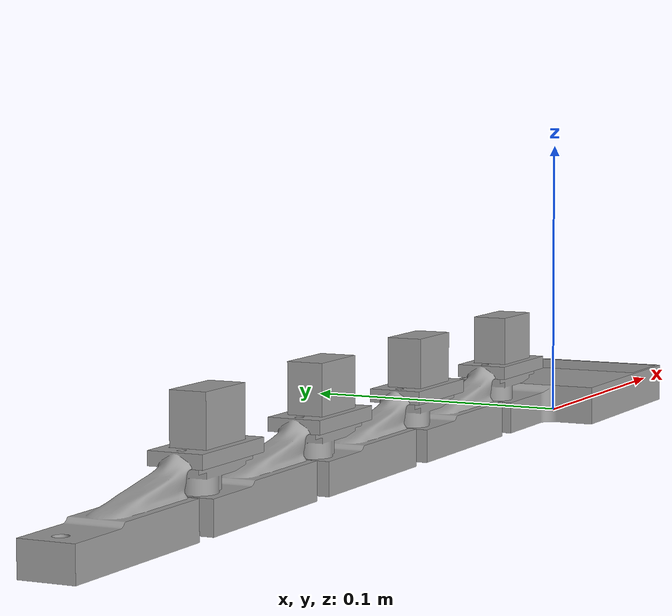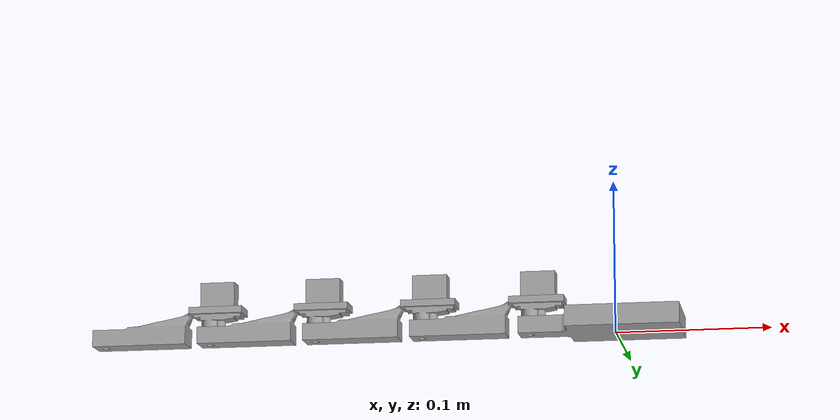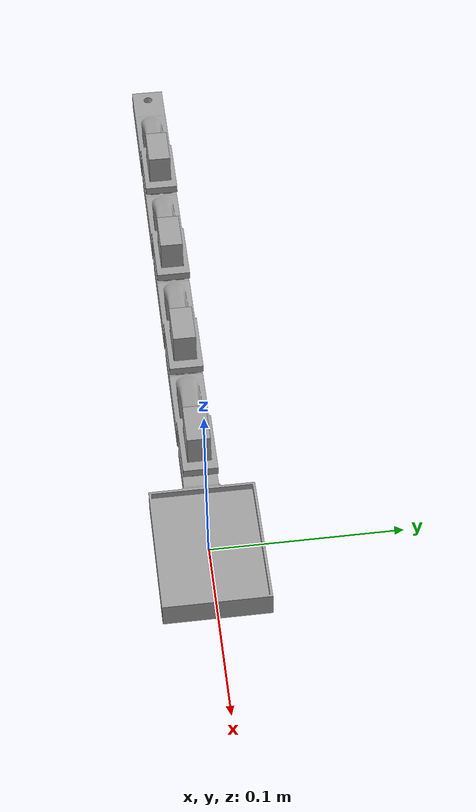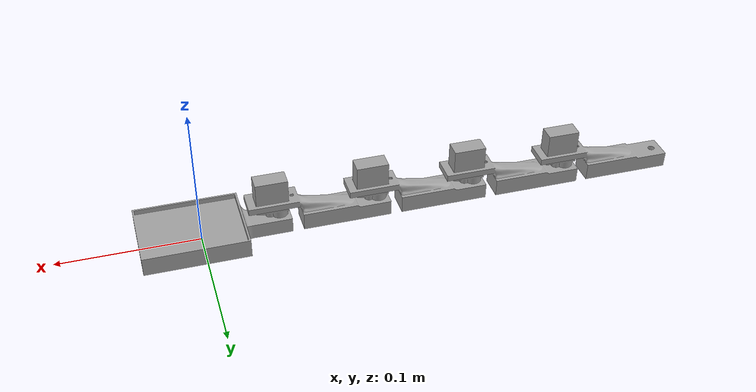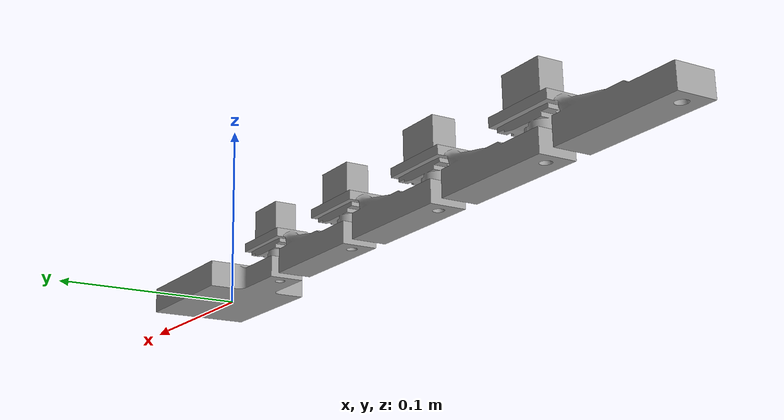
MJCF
<?xml version="1.0" ?>
<!-- Generated using onshape-to-robot -->
<!-- Onshape https://cad.onshape.com/documents/9ec2cb846d9d70ae61304659/w/ba4d2c22ff07b7474239914d/e/04263f3c44f724c158d2da0b -->
<mujoco model="snake">
  <compiler angle="radian" meshdir="assets" autolimits="true"/>
  <default>
    <default class="snake">
      <joint frictionloss="0.1" armature="0.005"/>
      <position kp="50" dampratio="1"/>
      <default class="visual">
        <geom type="mesh" contype="0" conaffinity="0" group="2"/>
      </default>
      <default class="collision">
        <geom group="3"/>
      </default>
    </default>
  </default>
  <worldbody>
    <!-- Link servo2 -->
    <body name="servo2" pos="0 0 0" quat="1 0 0 0" childclass="snake">
      <freejoint name="servo2_freejoint"/>
      <inertial pos="-0.0502156 4.07719e-13 0.0269005" mass="0.0138" fullinertia="7.56082e-07 1.07689e-06 5.43667e-07 -8.52222e-23 -5.73071e-08 -1.01692e-22"/>
      <!-- Part servo2 -->
      <geom type="mesh" class="visual" pos="-0.0384702 5.00034e-16 3.18303e-17" quat="0.707107 0.707107 -1.11022e-16 -1.01413e-17" mesh="servo2" material="servo2_material"/>
      <geom type="mesh" class="collision" pos="-0.0384702 5.00034e-16 3.18303e-17" quat="0.707107 0.707107 -1.11022e-16 -1.01413e-17" mesh="servo2" material="servo2_material"/>
      <!-- Link head -->
      <body name="head" pos="-0.0553202 5.05155e-16 0.007" quat="1 -1.06915e-16 1.11022e-16 -1.28223e-16">
        <!-- Joint from servo2 to head -->
        <joint axis="0 0 1" name="Servo1" type="hinge" range="-1.57 1.57" frictionloss="0.1"/>
        <inertial pos="0.0548283 -1.49039e-08 -0.00176061" mass="0.054" fullinertia="1.3842e-05 4.33369e-05 5.60532e-05 -2.06407e-11 1.32445e-07 4.76261e-12"/>
        <!-- Part head -->
        <geom type="mesh" class="visual" pos="-0.05315 -5.15091e-16 -0.007" quat="0.707107 0.707107 1.11022e-16 4.79386e-17" mesh="head" material="head_material"/>
        <geom type="mesh" class="collision" pos="-0.05315 -5.15091e-16 -0.007" quat="0.707107 0.707107 1.11022e-16 4.79386e-17" mesh="head" material="head_material"/>
      </body>
      <!-- Link body1 -->
      <body name="body1" pos="-0.0642209 -2.67714e-10 0.02" quat="1.06915e-16 1 -7.45931e-17 6.79763e-18">
        <!-- Joint from servo2 to body1 -->
        <!-- Joint is "fixed", skipping it -->
        <inertial pos="-0.029902 4.8746e-08 0.0115129" mass="0.0108" fullinertia="1.33619e-06 1.12727e-05 1.10359e-05 -2.14605e-11 1.70929e-06 1.12583e-11"/>
        <!-- Part body1 -->
        <geom type="mesh" class="visual" pos="-0.0452492 -2.67714e-10 0.02" quat="0.707107 -0.707107 1.11022e-16 -1.59463e-16" mesh="body1" material="body1_material"/>
        <geom type="mesh" class="collision" pos="-0.0452492 -2.67714e-10 0.02" quat="0.707107 -0.707107 1.11022e-16 -1.59463e-16" mesh="body1" material="body1_material"/>
        <!-- Link servo2_2 -->
        <body name="servo2_2" pos="-0.0620992 -2.67714e-10 0.013" quat="1 1.03799e-16 -1.11022e-16 -1.11298e-16">
          <!-- Joint from body1 to servo2_2 -->
          <joint axis="0 0 1" name="Servo2" type="hinge" range="-1.57 1.57" frictionloss="0.1"/>
          <inertial pos="0.00510462 -4.07211e-13 -0.0199005" mass="0.0138" fullinertia="7.56082e-07 1.07689e-06 5.43667e-07 9.1835e-68 5.73071e-08 1.99525e-66"/>
          <!-- Part servo2_2 -->
          <geom type="mesh" class="visual" pos="0.01685 0 0.007" quat="0.707107 -0.707107 -0 4.32978e-17" mesh="servo2" material="servo2_material"/>
          <geom type="mesh" class="collision" pos="0.01685 0 0.007" quat="0.707107 -0.707107 -0 4.32978e-17" mesh="servo2" material="servo2_material"/>
          <!-- Link body1_2 -->
          <body name="body1_2" pos="-0.00890077 2.67714e-10 -0.013" quat="1 0 -2.30876e-16 -8.83132e-18">
            <!-- Joint from servo2_2 to body1_2 -->
            <!-- Joint is "fixed", skipping it -->
            <inertial pos="-0.029902 4.8746e-08 0.0115129" mass="0.0108" fullinertia="1.33619e-06 1.12727e-05 1.10359e-05 -2.14605e-11 1.70929e-06 1.12583e-11"/>
            <!-- Part body1_2 -->
            <geom type="mesh" class="visual" pos="-0.0452492 -2.67714e-10 0.02" quat="0.707107 -0.707107 0 4.32978e-17" mesh="body1" material="body1_material"/>
            <geom type="mesh" class="collision" pos="-0.0452492 -2.67714e-10 0.02" quat="0.707107 -0.707107 0 4.32978e-17" mesh="body1" material="body1_material"/>
            <!-- Link servo2_3 -->
            <body name="servo2_3" pos="-0.0620992 -2.67714e-10 0.013" quat="1 0 -2.30876e-16 -8.83132e-18">
              <!-- Joint from body1_2 to servo2_3 -->
              <joint axis="0 0 1" name="Servo3" type="hinge" range="-1.57 1.57" frictionloss="0.1"/>
              <inertial pos="0.00510462 -4.07211e-13 -0.0199005" mass="0.0138" fullinertia="7.56082e-07 1.07689e-06 5.43667e-07 9.1835e-68 5.73071e-08 1.99525e-66"/>
              <!-- Part servo2_3 -->
              <geom type="mesh" class="visual" pos="0.01685 0 0.007" quat="0.707107 -0.707107 -0 4.32978e-17" mesh="servo2" material="servo2_material"/>
              <geom type="mesh" class="collision" pos="0.01685 0 0.007" quat="0.707107 -0.707107 -0 4.32978e-17" mesh="servo2" material="servo2_material"/>
              <!-- Link body1_3 -->
              <body name="body1_3" pos="-0.00890077 2.67714e-10 -0.013" quat="1 0 -2.30876e-16 -8.83132e-18">
                <!-- Joint from servo2_3 to body1_3 -->
                <!-- Joint is "fixed", skipping it -->
                <inertial pos="-0.029902 4.8746e-08 0.0115129" mass="0.0108" fullinertia="1.33619e-06 1.12727e-05 1.10359e-05 -2.14605e-11 1.70929e-06 1.12583e-11"/>
                <!-- Part body1_3 -->
                <geom type="mesh" class="visual" pos="-0.0452492 -2.67714e-10 0.02" quat="0.707107 -0.707107 0 4.32978e-17" mesh="body1" material="body1_material"/>
                <geom type="mesh" class="collision" pos="-0.0452492 -2.67714e-10 0.02" quat="0.707107 -0.707107 0 4.32978e-17" mesh="body1" material="body1_material"/>
                <!-- Link servo2_4 -->
                <body name="servo2_4" pos="-0.0620992 -2.67714e-10 0.013" quat="1 0 -2.30876e-16 -8.83132e-18">
                  <!-- Joint from body1_3 to servo2_4 -->
                  <joint axis="0 0 1" name="Servo4" type="hinge" range="-1.57 1.57" frictionloss="0.1"/>
                  <inertial pos="0.00510462 -4.07211e-13 -0.0199005" mass="0.0138" fullinertia="7.56082e-07 1.07689e-06 5.43667e-07 9.1835e-68 5.73071e-08 1.99525e-66"/>
                  <!-- Part servo2_4 -->
                  <geom type="mesh" class="visual" pos="0.01685 0 0.007" quat="0.707107 -0.707107 -0 4.32978e-17" mesh="servo2" material="servo2_material"/>
                  <geom type="mesh" class="collision" pos="0.01685 0 0.007" quat="0.707107 -0.707107 -0 4.32978e-17" mesh="servo2" material="servo2_material"/>
                  <!-- Link body1_4 -->
                  <body name="body1_4" pos="-0.00890077 2.67714e-10 -0.013" quat="1 0 -2.30876e-16 -8.83132e-18">
                    <!-- Joint from servo2_4 to body1_4 -->
                    <!-- Joint is "fixed", skipping it -->
                    <inertial pos="-0.029902 4.8746e-08 0.0115129" mass="0.0108" fullinertia="1.33619e-06 1.12727e-05 1.10359e-05 -2.14605e-11 1.70929e-06 1.12583e-11"/>
                    <!-- Part body1_4 -->
                    <geom type="mesh" class="visual" pos="-0.0452492 -2.67714e-10 0.02" quat="0.707107 -0.707107 0 4.32978e-17" mesh="body1" material="body1_material"/>
                    <geom type="mesh" class="collision" pos="-0.0452492 -2.67714e-10 0.02" quat="0.707107 -0.707107 0 4.32978e-17" mesh="body1" material="body1_material"/>
                  </body>
                </body>
              </body>
            </body>
          </body>
        </body>
      </body>
    </body>
  </worldbody>
  <asset>
    <mesh file="body1.stl"/>
    <mesh file="servo2.stl"/>
    <mesh file="head.stl"/>
    <material name="servo2_material" rgba="0.627451 0.627451 0.627451 1"/>
    <material name="head_material" rgba="0.627451 0.627451 0.627451 1"/>
    <material name="body1_material" rgba="0.627451 0.627451 0.627451 1"/>
  </asset>
  <actuator>
    <position class="snake" name="Servo1" joint="Servo1" forcerange="-0.35 0.35" inheritrange="1"/>
    <position class="snake" name="Servo2" joint="Servo2" forcerange="-0.35 0.35" inheritrange="1"/>
    <position class="snake" name="Servo3" joint="Servo3" forcerange="-0.35 0.35" inheritrange="1"/>
    <position class="snake" name="Servo4" joint="Servo4" forcerange="-0.35 0.35" inheritrange="1"/>
  </actuator>
  <equality/>
</mujoco>
